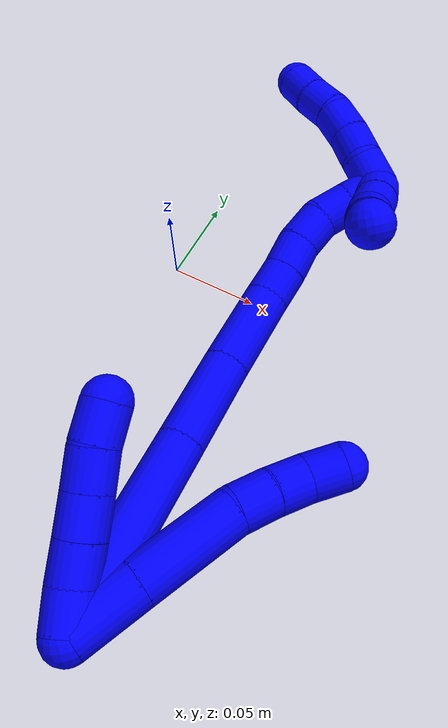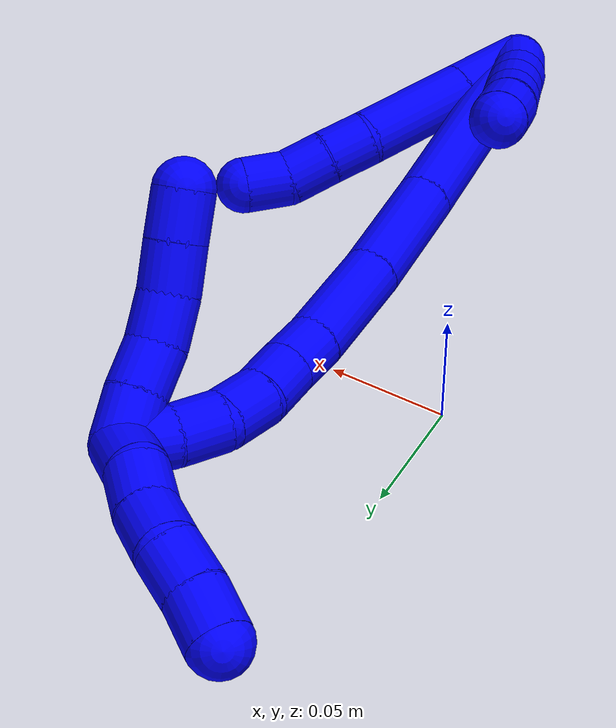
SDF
<sdf version="1.7">
 <world name="default">
  <model name="1">
   <static>0</static>
   <link name="1">
    <collision name="collision-cylinder-e_1_2_8">
     <pose>0.0152 0.008209 0.004612 -1.05896 1.01617 -0.630053</pose>
     <geometry><cylinder><radius>0.0125</radius><length>0.03576</length></cylinder></geometry>
     <surface>
      <friction><ode><mu>1.16</mu><mu2>1.16</mu2><slip1>0</slip1><slip2>0</slip2></ode></friction>
      <contact><ode><kp>1e+06</kp><kd>1</kd><max_vel>0</max_vel><min_depth>0.001</min_depth></ode></contact>
     </surface>
    </collision>
    <visual name="visual-cylinder-e_1_2_8">
     <pose>0.0152 0.008209 0.004612 -1.05896 1.01617 -0.630053</pose>
     <geometry><cylinder><radius>0.0125</radius><length>0.03576</length></cylinder></geometry>
     <material><ambient>0 0 1 1</ambient></material>
    </visual>
    <collision name="collision-cylinder-e_2_8_9">
     <pose>0.05328 0.028758 0.015986 -1.06945 1.01945 -0.639446</pose>
     <geometry><cylinder><radius>0.0125</radius><length>0.053722</length></cylinder></geometry>
     <surface>
      <friction><ode><mu>1.16</mu><mu2>1.16</mu2><slip1>0</slip1><slip2>0</slip2></ode></friction>
      <contact><ode><kp>1e+06</kp><kd>1</kd><max_vel>0</max_vel><min_depth>0.001</min_depth></ode></contact>
     </surface>
    </collision>
    <visual name="visual-cylinder-e_2_8_9">
     <pose>0.05328 0.028758 0.015986 -1.06945 1.01945 -0.639446</pose>
     <geometry><cylinder><radius>0.0125</radius><length>0.053722</length></cylinder></geometry>
     <material><ambient>0 0 1 1</ambient></material>
    </visual>
    <collision name="collision-cylinder-e_3_9_10">
     <pose>0.085225 0.04583 0.023314 -1.45179 1.08661 -0.984095</pose>
     <geometry><cylinder><radius>0.0125</radius><length>0.020484</length></cylinder></geometry>
     <surface>
      <friction><ode><mu>1.16</mu><mu2>1.16</mu2><slip1>0</slip1><slip2>0</slip2></ode></friction>
      <contact><ode><kp>1e+06</kp><kd>1</kd><max_vel>0</max_vel><min_depth>0.001</min_depth></ode></contact>
     </surface>
    </collision>
    <visual name="visual-cylinder-e_3_9_10">
     <pose>0.085225 0.04583 0.023314 -1.45179 1.08661 -0.984095</pose>
     <geometry><cylinder><radius>0.0125</radius><length>0.020484</length></cylinder></geometry>
     <material><ambient>0 0 1 1</ambient></material>
    </visual>
    <collision name="collision-cylinder-e_4_10_11">
     <pose>0.10305 0.055404 0.023639 -1.62063 1.06553 -1.10967</pose>
     <geometry><cylinder><radius>0.0125</radius><length>0.020023</length></cylinder></geometry>
     <surface>
      <friction><ode><mu>1.16</mu><mu2>1.16</mu2><slip1>0</slip1><slip2>0</slip2></ode></friction>
      <contact><ode><kp>1e+06</kp><kd>1</kd><max_vel>0</max_vel><min_depth>0.001</min_depth></ode></contact>
     </surface>
    </collision>
    <visual name="visual-cylinder-e_4_10_11">
     <pose>0.10305 0.055404 0.023639 -1.62063 1.06553 -1.10967</pose>
     <geometry><cylinder><radius>0.0125</radius><length>0.020023</length></cylinder></geometry>
     <material><ambient>0 0 1 1</ambient></material>
    </visual>
    <collision name="collision-cylinder-e_5_11_6">
     <pose>0.121619 0.062177 0.02381 -1.36058 1.37195 -1.17003</pose>
     <geometry><cylinder><radius>0.0125</radius><length>0.020012</length></cylinder></geometry>
     <surface>
      <friction><ode><mu>1.16</mu><mu2>1.16</mu2><slip1>0</slip1><slip2>0</slip2></ode></friction>
      <contact><ode><kp>1e+06</kp><kd>1</kd><max_vel>0</max_vel><min_depth>0.001</min_depth></ode></contact>
     </surface>
    </collision>
    <visual name="visual-cylinder-e_5_11_6">
     <pose>0.121619 0.062177 0.02381 -1.36058 1.37195 -1.17003</pose>
     <geometry><cylinder><radius>0.0125</radius><length>0.020012</length></cylinder></geometry>
     <material><ambient>0 0 1 1</ambient></material>
    </visual>
    <collision name="collision-cylinder-e_1_2_12">
     <pose>0.002297 0.004568 0.008594 -0.48861 0.231802 -0.058028</pose>
     <geometry><cylinder><radius>0.0125</radius><length>0.02</length></cylinder></geometry>
     <surface>
      <friction><ode><mu>1.16</mu><mu2>1.16</mu2><slip1>0</slip1><slip2>0</slip2></ode></friction>
      <contact><ode><kp>1e+06</kp><kd>1</kd><max_vel>0</max_vel><min_depth>0.001</min_depth></ode></contact>
     </surface>
    </collision>
    <visual name="visual-cylinder-e_1_2_12">
     <pose>0.002297 0.004568 0.008594 -0.48861 0.231802 -0.058028</pose>
     <geometry><cylinder><radius>0.0125</radius><length>0.02</length></cylinder></geometry>
     <material><ambient>0 0 1 1</ambient></material>
    </visual>
    <collision name="collision-cylinder-e_2_12_13">
     <pose>0.007827 0.012395 0.026072 -0.351478 0.329121 -0.058958</pose>
     <geometry><cylinder><radius>0.0125</radius><length>0.02</length></cylinder></geometry>
     <surface>
      <friction><ode><mu>1.16</mu><mu2>1.16</mu2><slip1>0</slip1><slip2>0</slip2></ode></friction>
      <contact><ode><kp>1e+06</kp><kd>1</kd><max_vel>0</max_vel><min_depth>0.001</min_depth></ode></contact>
     </surface>
    </collision>
    <visual name="visual-cylinder-e_2_12_13">
     <pose>0.007827 0.012395 0.026072 -0.351478 0.329121 -0.058958</pose>
     <geometry><cylinder><radius>0.0125</radius><length>0.02</length></cylinder></geometry>
     <material><ambient>0 0 1 1</ambient></material>
    </visual>
    <collision name="collision-cylinder-e_3_13_14">
     <pose>0.014154 0.01897 0.043868 -0.356368 0.314639 -0.057121</pose>
     <geometry><cylinder><radius>0.0125</radius><length>0.02</length></cylinder></geometry>
     <surface>
      <friction><ode><mu>1.16</mu><mu2>1.16</mu2><slip1>0</slip1><slip2>0</slip2></ode></friction>
      <contact><ode><kp>1e+06</kp><kd>1</kd><max_vel>0</max_vel><min_depth>0.001</min_depth></ode></contact>
     </surface>
    </collision>
    <visual name="visual-cylinder-e_3_13_14">
     <pose>0.014154 0.01897 0.043868 -0.356368 0.314639 -0.057121</pose>
     <geometry><cylinder><radius>0.0125</radius><length>0.02</length></cylinder></geometry>
     <material><ambient>0 0 1 1</ambient></material>
    </visual>
    <collision name="collision-cylinder-e_4_14_15">
     <pose>0.0203 0.025221 0.06184 -0.313065 0.310079 -0.049324</pose>
     <geometry><cylinder><radius>0.0125</radius><length>0.02</length></cylinder></geometry>
     <surface>
      <friction><ode><mu>1.16</mu><mu2>1.16</mu2><slip1>0</slip1><slip2>0</slip2></ode></friction>
      <contact><ode><kp>1e+06</kp><kd>1</kd><max_vel>0</max_vel><min_depth>0.001</min_depth></ode></contact>
     </surface>
    </collision>
    <visual name="visual-cylinder-e_4_14_15">
     <pose>0.0203 0.025221 0.06184 -0.313065 0.310079 -0.049324</pose>
     <geometry><cylinder><radius>0.0125</radius><length>0.02</length></cylinder></geometry>
     <material><ambient>0 0 1 1</ambient></material>
    </visual>
    <collision name="collision-cylinder-e_5_15_5">
     <pose>0.027532 0.031838 0.079204 -0.417663 0.431338 -0.092787</pose>
     <geometry><cylinder><radius>0.0125</radius><length>0.02</length></cylinder></geometry>
     <surface>
      <friction><ode><mu>1.16</mu><mu2>1.16</mu2><slip1>0</slip1><slip2>0</slip2></ode></friction>
      <contact><ode><kp>1e+06</kp><kd>1</kd><max_vel>0</max_vel><min_depth>0.001</min_depth></ode></contact>
     </surface>
    </collision>
    <visual name="visual-cylinder-e_5_15_5">
     <pose>0.027532 0.031838 0.079204 -0.417663 0.431338 -0.092787</pose>
     <geometry><cylinder><radius>0.0125</radius><length>0.02</length></cylinder></geometry>
     <material><ambient>0 0 1 1</ambient></material>
    </visual>
    <collision name="collision-cylinder-e_1_2_16">
     <pose>0.027346 0.034272 0.02541 -0.932808 0.569984 -0.292877</pose>
     <geometry><cylinder><radius>0.0125</radius><length>0.101352</length></cylinder></geometry>
     <surface>
      <friction><ode><mu>1.16</mu><mu2>1.16</mu2><slip1>0</slip1><slip2>0</slip2></ode></friction>
      <contact><ode><kp>1e+06</kp><kd>1</kd><max_vel>0</max_vel><min_depth>0.001</min_depth></ode></contact>
     </surface>
    </collision>
    <visual name="visual-cylinder-e_1_2_16">
     <pose>0.027346 0.034272 0.02541 -0.932808 0.569984 -0.292877</pose>
     <geometry><cylinder><radius>0.0125</radius><length>0.101352</length></cylinder></geometry>
     <material><ambient>0 0 1 1</ambient></material>
    </visual>
    <collision name="collision-cylinder-e_2_16_17">
     <pose>0.068547 0.084857 0.063978 -0.892068 0.584153 -0.285593</pose>
     <geometry><cylinder><radius>0.0125</radius><length>0.050246</length></cylinder></geometry>
     <surface>
      <friction><ode><mu>1.16</mu><mu2>1.16</mu2><slip1>0</slip1><slip2>0</slip2></ode></friction>
      <contact><ode><kp>1e+06</kp><kd>1</kd><max_vel>0</max_vel><min_depth>0.001</min_depth></ode></contact>
     </surface>
    </collision>
    <visual name="visual-cylinder-e_2_16_17">
     <pose>0.068547 0.084857 0.063978 -0.892068 0.584153 -0.285593</pose>
     <geometry><cylinder><radius>0.0125</radius><length>0.050246</length></cylinder></geometry>
     <material><ambient>0 0 1 1</ambient></material>
    </visual>
    <collision name="collision-cylinder-e_3_17_18">
     <pose>0.096236 0.115291 0.089949 -0.833893 0.627626 -0.285529</pose>
     <geometry><cylinder><radius>0.0125</radius><length>0.047116</length></cylinder></geometry>
     <surface>
      <friction><ode><mu>1.16</mu><mu2>1.16</mu2><slip1>0</slip1><slip2>0</slip2></ode></friction>
      <contact><ode><kp>1e+06</kp><kd>1</kd><max_vel>0</max_vel><min_depth>0.001</min_depth></ode></contact>
     </surface>
    </collision>
    <visual name="visual-cylinder-e_3_17_18">
     <pose>0.096236 0.115291 0.089949 -0.833893 0.627626 -0.285529</pose>
     <geometry><cylinder><radius>0.0125</radius><length>0.047116</length></cylinder></geometry>
     <material><ambient>0 0 1 1</ambient></material>
    </visual>
    <collision name="collision-cylinder-e_4_18_19">
     <pose>0.116418 0.134621 0.108536 -0.733973 0.684668 -0.272279</pose>
     <geometry><cylinder><radius>0.0125</radius><length>0.020077</length></cylinder></geometry>
     <surface>
      <friction><ode><mu>1.16</mu><mu2>1.16</mu2><slip1>0</slip1><slip2>0</slip2></ode></friction>
      <contact><ode><kp>1e+06</kp><kd>1</kd><max_vel>0</max_vel><min_depth>0.001</min_depth></ode></contact>
     </surface>
    </collision>
    <visual name="visual-cylinder-e_4_18_19">
     <pose>0.116418 0.134621 0.108536 -0.733973 0.684668 -0.272279</pose>
     <geometry><cylinder><radius>0.0125</radius><length>0.020077</length></cylinder></geometry>
     <material><ambient>0 0 1 1</ambient></material>
    </visual>
    <collision name="collision-cylinder-e_5_19_20">
     <pose>0.128676 0.144813 0.120857 -0.650671 0.622829 -0.216312</pose>
     <geometry><cylinder><radius>0.0125</radius><length>0.020259</length></cylinder></geometry>
     <surface>
      <friction><ode><mu>1.16</mu><mu2>1.16</mu2><slip1>0</slip1><slip2>0</slip2></ode></friction>
      <contact><ode><kp>1e+06</kp><kd>1</kd><max_vel>0</max_vel><min_depth>0.001</min_depth></ode></contact>
     </surface>
    </collision>
    <visual name="visual-cylinder-e_5_19_20">
     <pose>0.128676 0.144813 0.120857 -0.650671 0.622829 -0.216312</pose>
     <geometry><cylinder><radius>0.0125</radius><length>0.020259</length></cylinder></geometry>
     <material><ambient>0 0 1 1</ambient></material>
    </visual>
    <collision name="collision-cylinder-e_6_20_21">
     <pose>0.142291 0.153869 0.132944 -0.633814 0.842234 -0.291709</pose>
     <geometry><cylinder><radius>0.0125</radius><length>0.020658</length></cylinder></geometry>
     <surface>
      <friction><ode><mu>1.16</mu><mu2>1.16</mu2><slip1>0</slip1><slip2>0</slip2></ode></friction>
      <contact><ode><kp>1e+06</kp><kd>1</kd><max_vel>0</max_vel><min_depth>0.001</min_depth></ode></contact>
     </surface>
    </collision>
    <visual name="visual-cylinder-e_6_20_21">
     <pose>0.142291 0.153869 0.132944 -0.633814 0.842234 -0.291709</pose>
     <geometry><cylinder><radius>0.0125</radius><length>0.020658</length></cylinder></geometry>
     <material><ambient>0 0 1 1</ambient></material>
    </visual>
    <collision name="collision-cylinder-e_7_21_22">
     <pose>0.15928 0.160608 0.141274 -0.762968 1.17694 -0.523124</pose>
     <geometry><cylinder><radius>0.0125</radius><length>0.020103</length></cylinder></geometry>
     <surface>
      <friction><ode><mu>1.16</mu><mu2>1.16</mu2><slip1>0</slip1><slip2>0</slip2></ode></friction>
      <contact><ode><kp>1e+06</kp><kd>1</kd><max_vel>0</max_vel><min_depth>0.001</min_depth></ode></contact>
     </surface>
    </collision>
    <visual name="visual-cylinder-e_7_21_22">
     <pose>0.15928 0.160608 0.141274 -0.762968 1.17694 -0.523124</pose>
     <geometry><cylinder><radius>0.0125</radius><length>0.020103</length></cylinder></geometry>
     <material><ambient>0 0 1 1</ambient></material>
    </visual>
    <collision name="collision-cylinder-e_8_22_1">
     <pose>0.178213 0.164706 0.146647 -0.506131 1.27357 -0.37795</pose>
     <geometry><cylinder><radius>0.0125</radius><length>0.020189</length></cylinder></geometry>
     <surface>
      <friction><ode><mu>1.16</mu><mu2>1.16</mu2><slip1>0</slip1><slip2>0</slip2></ode></friction>
      <contact><ode><kp>1e+06</kp><kd>1</kd><max_vel>0</max_vel><min_depth>0.001</min_depth></ode></contact>
     </surface>
    </collision>
    <visual name="visual-cylinder-e_8_22_1">
     <pose>0.178213 0.164706 0.146647 -0.506131 1.27357 -0.37795</pose>
     <geometry><cylinder><radius>0.0125</radius><length>0.020189</length></cylinder></geometry>
     <material><ambient>0 0 1 1</ambient></material>
    </visual>
    <collision name="collision-cylinder-e_1_1_23">
     <pose>0.185359 0.169961 0.158128 -0.405752 -0.253328 0.05238</pose>
     <geometry><cylinder><radius>0.0125</radius><length>0.02</length></cylinder></geometry>
     <surface>
      <friction><ode><mu>1.16</mu><mu2>1.16</mu2><slip1>0</slip1><slip2>0</slip2></ode></friction>
      <contact><ode><kp>1e+06</kp><kd>1</kd><max_vel>0</max_vel><min_depth>0.001</min_depth></ode></contact>
     </surface>
    </collision>
    <visual name="visual-cylinder-e_1_1_23">
     <pose>0.185359 0.169961 0.158128 -0.405752 -0.253328 0.05238</pose>
     <geometry><cylinder><radius>0.0125</radius><length>0.02</length></cylinder></geometry>
     <material><ambient>0 0 1 1</ambient></material>
    </visual>
    <collision name="collision-cylinder-e_2_23_24">
     <pose>0.181262 0.179974 0.174712 -0.677948 -0.159713 0.056417</pose>
     <geometry><cylinder><radius>0.0125</radius><length>0.02</length></cylinder></geometry>
     <surface>
      <friction><ode><mu>1.16</mu><mu2>1.16</mu2><slip1>0</slip1><slip2>0</slip2></ode></friction>
      <contact><ode><kp>1e+06</kp><kd>1</kd><max_vel>0</max_vel><min_depth>0.001</min_depth></ode></contact>
     </surface>
    </collision>
    <visual name="visual-cylinder-e_2_23_24">
     <pose>0.181262 0.179974 0.174712 -0.677948 -0.159713 0.056417</pose>
     <geometry><cylinder><radius>0.0125</radius><length>0.02</length></cylinder></geometry>
     <material><ambient>0 0 1 1</ambient></material>
    </visual>
    <collision name="collision-cylinder-e_3_24_25">
     <pose>0.176579 0.191131 0.190513 -0.549246 -0.314439 0.089269</pose>
     <geometry><cylinder><radius>0.0125</radius><length>0.02</length></cylinder></geometry>
     <surface>
      <friction><ode><mu>1.16</mu><mu2>1.16</mu2><slip1>0</slip1><slip2>0</slip2></ode></friction>
      <contact><ode><kp>1e+06</kp><kd>1</kd><max_vel>0</max_vel><min_depth>0.001</min_depth></ode></contact>
     </surface>
    </collision>
    <visual name="visual-cylinder-e_3_24_25">
     <pose>0.176579 0.191131 0.190513 -0.549246 -0.314439 0.089269</pose>
     <geometry><cylinder><radius>0.0125</radius><length>0.02</length></cylinder></geometry>
     <material><ambient>0 0 1 1</ambient></material>
    </visual>
    <collision name="collision-cylinder-e_4_25_26">
     <pose>0.169001 0.202569 0.204786 -0.810004 -0.465079 0.20236</pose>
     <geometry><cylinder><radius>0.0125</radius><length>0.02</length></cylinder></geometry>
     <surface>
      <friction><ode><mu>1.16</mu><mu2>1.16</mu2><slip1>0</slip1><slip2>0</slip2></ode></friction>
      <contact><ode><kp>1e+06</kp><kd>1</kd><max_vel>0</max_vel><min_depth>0.001</min_depth></ode></contact>
     </surface>
    </collision>
    <visual name="visual-cylinder-e_4_25_26">
     <pose>0.169001 0.202569 0.204786 -0.810004 -0.465079 0.20236</pose>
     <geometry><cylinder><radius>0.0125</radius><length>0.02</length></cylinder></geometry>
     <material><ambient>0 0 1 1</ambient></material>
    </visual>
    <collision name="collision-cylinder-e_5_26_4">
     <pose>0.160903 0.215923 0.217242 -0.829925 -0.369663 0.164362</pose>
     <geometry><cylinder><radius>0.0125</radius><length>0.02</length></cylinder></geometry>
     <surface>
      <friction><ode><mu>1.16</mu><mu2>1.16</mu2><slip1>0</slip1><slip2>0</slip2></ode></friction>
      <contact><ode><kp>1e+06</kp><kd>1</kd><max_vel>0</max_vel><min_depth>0.001</min_depth></ode></contact>
     </surface>
    </collision>
    <visual name="visual-cylinder-e_5_26_4">
     <pose>0.160903 0.215923 0.217242 -0.829925 -0.369663 0.164362</pose>
     <geometry><cylinder><radius>0.0125</radius><length>0.02</length></cylinder></geometry>
     <material><ambient>0 0 1 1</ambient></material>
    </visual>
    <collision name="collision-cylinder-e_1_1_27">
     <pose>0.18524 0.156946 0.146303 1.87931 -0.265663 -0.361651</pose>
     <geometry><cylinder><radius>0.0125</radius><length>0.02</length></cylinder></geometry>
     <surface>
      <friction><ode><mu>1.16</mu><mu2>1.16</mu2><slip1>0</slip1><slip2>0</slip2></ode></friction>
      <contact><ode><kp>1e+06</kp><kd>1</kd><max_vel>0</max_vel><min_depth>0.001</min_depth></ode></contact>
     </surface>
    </collision>
    <visual name="visual-cylinder-e_1_1_27">
     <pose>0.18524 0.156946 0.146303 1.87931 -0.265663 -0.361651</pose>
     <geometry><cylinder><radius>0.0125</radius><length>0.02</length></cylinder></geometry>
     <material><ambient>0 0 1 1</ambient></material>
    </visual>
    <collision name="collision-cylinder-e_2_27_28">
     <pose>0.178968 0.138783 0.140873 1.84267 -0.373284 -0.487479</pose>
     <geometry><cylinder><radius>0.0125</radius><length>0.02</length></cylinder></geometry>
     <surface>
      <friction><ode><mu>1.16</mu><mu2>1.16</mu2><slip1>0</slip1><slip2>0</slip2></ode></friction>
      <contact><ode><kp>1e+06</kp><kd>1</kd><max_vel>0</max_vel><min_depth>0.001</min_depth></ode></contact>
     </surface>
    </collision>
    <visual name="visual-cylinder-e_2_27_28">
     <pose>0.178968 0.138783 0.140873 1.84267 -0.373284 -0.487479</pose>
     <geometry><cylinder><radius>0.0125</radius><length>0.02</length></cylinder></geometry>
     <material><ambient>0 0 1 1</ambient></material>
    </visual>
    <collision name="collision-cylinder-e_3_28_29">
     <pose>0.173127 0.120099 0.137465 1.66396 -0.221141 -0.242564</pose>
     <geometry><cylinder><radius>0.0125</radius><length>0.02</length></cylinder></geometry>
     <surface>
      <friction><ode><mu>1.16</mu><mu2>1.16</mu2><slip1>0</slip1><slip2>0</slip2></ode></friction>
      <contact><ode><kp>1e+06</kp><kd>1</kd><max_vel>0</max_vel><min_depth>0.001</min_depth></ode></contact>
     </surface>
    </collision>
    <visual name="visual-cylinder-e_3_28_29">
     <pose>0.173127 0.120099 0.137465 1.66396 -0.221141 -0.242564</pose>
     <geometry><cylinder><radius>0.0125</radius><length>0.02</length></cylinder></geometry>
     <material><ambient>0 0 1 1</ambient></material>
    </visual>
    <collision name="collision-cylinder-e_4_29_30">
     <pose>0.169879 0.100458 0.137137 1.51249 -0.105672 -0.099694</pose>
     <geometry><cylinder><radius>0.0125</radius><length>0.02</length></cylinder></geometry>
     <surface>
      <friction><ode><mu>1.16</mu><mu2>1.16</mu2><slip1>0</slip1><slip2>0</slip2></ode></friction>
      <contact><ode><kp>1e+06</kp><kd>1</kd><max_vel>0</max_vel><min_depth>0.001</min_depth></ode></contact>
     </surface>
    </collision>
    <visual name="visual-cylinder-e_4_29_30">
     <pose>0.169879 0.100458 0.137137 1.51249 -0.105672 -0.099694</pose>
     <geometry><cylinder><radius>0.0125</radius><length>0.02</length></cylinder></geometry>
     <material><ambient>0 0 1 1</ambient></material>
    </visual>
    <collision name="collision-cylinder-e_5_30_3">
     <pose>0.167545 0.08062 0.138099 1.53217 -0.128247 -0.123399</pose>
     <geometry><cylinder><radius>0.0125</radius><length>0.02</length></cylinder></geometry>
     <surface>
      <friction><ode><mu>1.16</mu><mu2>1.16</mu2><slip1>0</slip1><slip2>0</slip2></ode></friction>
      <contact><ode><kp>1e+06</kp><kd>1</kd><max_vel>0</max_vel><min_depth>0.001</min_depth></ode></contact>
     </surface>
    </collision>
    <visual name="visual-cylinder-e_5_30_3">
     <pose>0.167545 0.08062 0.138099 1.53217 -0.128247 -0.123399</pose>
     <geometry><cylinder><radius>0.0125</radius><length>0.02</length></cylinder></geometry>
     <material><ambient>0 0 1 1</ambient></material>
    </visual>
    <collision name="collision-sphere-3">
     <pose>0.166266 0.07071 0.138482 0 -0 0</pose>
     <geometry><sphere><radius>0.0125</radius></sphere></geometry>
     <surface>
      <friction><ode><mu>1.16</mu><mu2>1.16</mu2><slip1>0</slip1><slip2>0</slip2></ode></friction>
      <contact><ode><kp>1e+06</kp><kd>1</kd><max_vel>0</max_vel><min_depth>0.001</min_depth></ode></contact>
     </surface>
    </collision>
    <visual name="visual-sphere-3">
     <pose>0.166266 0.07071 0.138482 0 -0 0</pose>
     <geometry><sphere><radius>0.0125</radius></sphere></geometry>
     <material><ambient>0 0 1 1</ambient></material>
    </visual>
    <collision name="collision-sphere-30">
     <pose>0.168824 0.090531 0.137716 0 -0 0</pose>
     <geometry><sphere><radius>0.0125</radius></sphere></geometry>
     <surface>
      <friction><ode><mu>1.16</mu><mu2>1.16</mu2><slip1>0</slip1><slip2>0</slip2></ode></friction>
      <contact><ode><kp>1e+06</kp><kd>1</kd><max_vel>0</max_vel><min_depth>0.001</min_depth></ode></contact>
     </surface>
    </collision>
    <visual name="visual-sphere-30">
     <pose>0.168824 0.090531 0.137716 0 -0 0</pose>
     <geometry><sphere><radius>0.0125</radius></sphere></geometry>
     <material><ambient>0 0 1 1</ambient></material>
    </visual>
    <collision name="collision-sphere-29">
     <pose>0.170934 0.110385 0.136557 0 -0 0</pose>
     <geometry><sphere><radius>0.0125</radius></sphere></geometry>
     <surface>
      <friction><ode><mu>1.16</mu><mu2>1.16</mu2><slip1>0</slip1><slip2>0</slip2></ode></friction>
      <contact><ode><kp>1e+06</kp><kd>1</kd><max_vel>0</max_vel><min_depth>0.001</min_depth></ode></contact>
     </surface>
    </collision>
    <visual name="visual-sphere-29">
     <pose>0.170934 0.110385 0.136557 0 -0 0</pose>
     <geometry><sphere><radius>0.0125</radius></sphere></geometry>
     <material><ambient>0 0 1 1</ambient></material>
    </visual>
    <collision name="collision-sphere-28">
     <pose>0.175321 0.129814 0.138372 0 -0 0</pose>
     <geometry><sphere><radius>0.0125</radius></sphere></geometry>
     <surface>
      <friction><ode><mu>1.16</mu><mu2>1.16</mu2><slip1>0</slip1><slip2>0</slip2></ode></friction>
      <contact><ode><kp>1e+06</kp><kd>1</kd><max_vel>0</max_vel><min_depth>0.001</min_depth></ode></contact>
     </surface>
    </collision>
    <visual name="visual-sphere-28">
     <pose>0.175321 0.129814 0.138372 0 -0 0</pose>
     <geometry><sphere><radius>0.0125</radius></sphere></geometry>
     <material><ambient>0 0 1 1</ambient></material>
    </visual>
    <collision name="collision-sphere-27">
     <pose>0.182614 0.147752 0.143373 0 -0 0</pose>
     <geometry><sphere><radius>0.0125</radius></sphere></geometry>
     <surface>
      <friction><ode><mu>1.16</mu><mu2>1.16</mu2><slip1>0</slip1><slip2>0</slip2></ode></friction>
      <contact><ode><kp>1e+06</kp><kd>1</kd><max_vel>0</max_vel><min_depth>0.001</min_depth></ode></contact>
     </surface>
    </collision>
    <visual name="visual-sphere-27">
     <pose>0.182614 0.147752 0.143373 0 -0 0</pose>
     <geometry><sphere><radius>0.0125</radius></sphere></geometry>
     <material><ambient>0 0 1 1</ambient></material>
    </visual>
    <collision name="collision-sphere-4">
     <pose>0.15729 0.222803 0.223536 0 -0 0</pose>
     <geometry><sphere><radius>0.0125</radius></sphere></geometry>
     <surface>
      <friction><ode><mu>1.16</mu><mu2>1.16</mu2><slip1>0</slip1><slip2>0</slip2></ode></friction>
      <contact><ode><kp>1e+06</kp><kd>1</kd><max_vel>0</max_vel><min_depth>0.001</min_depth></ode></contact>
     </surface>
    </collision>
    <visual name="visual-sphere-4">
     <pose>0.15729 0.222803 0.223536 0 -0 0</pose>
     <geometry><sphere><radius>0.0125</radius></sphere></geometry>
     <material><ambient>0 0 1 1</ambient></material>
    </visual>
    <collision name="collision-sphere-26">
     <pose>0.164516 0.209042 0.210949 0 -0 0</pose>
     <geometry><sphere><radius>0.0125</radius></sphere></geometry>
     <surface>
      <friction><ode><mu>1.16</mu><mu2>1.16</mu2><slip1>0</slip1><slip2>0</slip2></ode></friction>
      <contact><ode><kp>1e+06</kp><kd>1</kd><max_vel>0</max_vel><min_depth>0.001</min_depth></ode></contact>
     </surface>
    </collision>
    <visual name="visual-sphere-26">
     <pose>0.164516 0.209042 0.210949 0 -0 0</pose>
     <geometry><sphere><radius>0.0125</radius></sphere></geometry>
     <material><ambient>0 0 1 1</ambient></material>
    </visual>
    <collision name="collision-sphere-25">
     <pose>0.173486 0.196095 0.198624 0 -0 0</pose>
     <geometry><sphere><radius>0.0125</radius></sphere></geometry>
     <surface>
      <friction><ode><mu>1.16</mu><mu2>1.16</mu2><slip1>0</slip1><slip2>0</slip2></ode></friction>
      <contact><ode><kp>1e+06</kp><kd>1</kd><max_vel>0</max_vel><min_depth>0.001</min_depth></ode></contact>
     </surface>
    </collision>
    <visual name="visual-sphere-25">
     <pose>0.173486 0.196095 0.198624 0 -0 0</pose>
     <geometry><sphere><radius>0.0125</radius></sphere></geometry>
     <material><ambient>0 0 1 1</ambient></material>
    </visual>
    <collision name="collision-sphere-24">
     <pose>0.179672 0.186166 0.182402 0 -0 0</pose>
     <geometry><sphere><radius>0.0125</radius></sphere></geometry>
     <surface>
      <friction><ode><mu>1.16</mu><mu2>1.16</mu2><slip1>0</slip1><slip2>0</slip2></ode></friction>
      <contact><ode><kp>1e+06</kp><kd>1</kd><max_vel>0</max_vel><min_depth>0.001</min_depth></ode></contact>
     </surface>
    </collision>
    <visual name="visual-sphere-24">
     <pose>0.179672 0.186166 0.182402 0 -0 0</pose>
     <geometry><sphere><radius>0.0125</radius></sphere></geometry>
     <material><ambient>0 0 1 1</ambient></material>
    </visual>
    <collision name="collision-sphere-23">
     <pose>0.182853 0.173782 0.167023 0 -0 0</pose>
     <geometry><sphere><radius>0.0125</radius></sphere></geometry>
     <surface>
      <friction><ode><mu>1.16</mu><mu2>1.16</mu2><slip1>0</slip1><slip2>0</slip2></ode></friction>
      <contact><ode><kp>1e+06</kp><kd>1</kd><max_vel>0</max_vel><min_depth>0.001</min_depth></ode></contact>
     </surface>
    </collision>
    <visual name="visual-sphere-23">
     <pose>0.182853 0.173782 0.167023 0 -0 0</pose>
     <geometry><sphere><radius>0.0125</radius></sphere></geometry>
     <material><ambient>0 0 1 1</ambient></material>
    </visual>
    <collision name="collision-sphere-1">
     <pose>0.187865 0.16614 0.149233 0 -0 0</pose>
     <geometry><sphere><radius>0.0125</radius></sphere></geometry>
     <surface>
      <friction><ode><mu>1.16</mu><mu2>1.16</mu2><slip1>0</slip1><slip2>0</slip2></ode></friction>
      <contact><ode><kp>1e+06</kp><kd>1</kd><max_vel>0</max_vel><min_depth>0.001</min_depth></ode></contact>
     </surface>
    </collision>
    <visual name="visual-sphere-1">
     <pose>0.187865 0.16614 0.149233 0 -0 0</pose>
     <geometry><sphere><radius>0.0125</radius></sphere></geometry>
     <material><ambient>0 0 1 1</ambient></material>
    </visual>
    <collision name="collision-sphere-22">
     <pose>0.168562 0.163273 0.144062 0 -0 0</pose>
     <geometry><sphere><radius>0.0125</radius></sphere></geometry>
     <surface>
      <friction><ode><mu>1.16</mu><mu2>1.16</mu2><slip1>0</slip1><slip2>0</slip2></ode></friction>
      <contact><ode><kp>1e+06</kp><kd>1</kd><max_vel>0</max_vel><min_depth>0.001</min_depth></ode></contact>
     </surface>
    </collision>
    <visual name="visual-sphere-22">
     <pose>0.168562 0.163273 0.144062 0 -0 0</pose>
     <geometry><sphere><radius>0.0125</radius></sphere></geometry>
     <material><ambient>0 0 1 1</ambient></material>
    </visual>
    <collision name="collision-sphere-21">
     <pose>0.149998 0.157942 0.138486 0 -0 0</pose>
     <geometry><sphere><radius>0.0125</radius></sphere></geometry>
     <surface>
      <friction><ode><mu>1.16</mu><mu2>1.16</mu2><slip1>0</slip1><slip2>0</slip2></ode></friction>
      <contact><ode><kp>1e+06</kp><kd>1</kd><max_vel>0</max_vel><min_depth>0.001</min_depth></ode></contact>
     </surface>
    </collision>
    <visual name="visual-sphere-21">
     <pose>0.149998 0.157942 0.138486 0 -0 0</pose>
     <geometry><sphere><radius>0.0125</radius></sphere></geometry>
     <material><ambient>0 0 1 1</ambient></material>
    </visual>
    <collision name="collision-sphere-6">
     <pose>0.131428 0.06411 0.024223 0 -0 0</pose>
     <geometry><sphere><radius>0.0125</radius></sphere></geometry>
     <surface>
      <friction><ode><mu>1.16</mu><mu2>1.16</mu2><slip1>0</slip1><slip2>0</slip2></ode></friction>
      <contact><ode><kp>1e+06</kp><kd>1</kd><max_vel>0</max_vel><min_depth>0.001</min_depth></ode></contact>
     </surface>
    </collision>
    <visual name="visual-sphere-6">
     <pose>0.131428 0.06411 0.024223 0 -0 0</pose>
     <geometry><sphere><radius>0.0125</radius></sphere></geometry>
     <material><ambient>0 0 1 1</ambient></material>
    </visual>
    <collision name="collision-sphere-11">
     <pose>0.111811 0.060244 0.023398 0 -0 0</pose>
     <geometry><sphere><radius>0.0125</radius></sphere></geometry>
     <surface>
      <friction><ode><mu>1.16</mu><mu2>1.16</mu2><slip1>0</slip1><slip2>0</slip2></ode></friction>
      <contact><ode><kp>1e+06</kp><kd>1</kd><max_vel>0</max_vel><min_depth>0.001</min_depth></ode></contact>
     </surface>
    </collision>
    <visual name="visual-sphere-11">
     <pose>0.111811 0.060244 0.023398 0 -0 0</pose>
     <geometry><sphere><radius>0.0125</radius></sphere></geometry>
     <material><ambient>0 0 1 1</ambient></material>
    </visual>
    <collision name="collision-sphere-10">
     <pose>0.09429 0.050564 0.023881 0 -0 0</pose>
     <geometry><sphere><radius>0.0125</radius></sphere></geometry>
     <surface>
      <friction><ode><mu>1.16</mu><mu2>1.16</mu2><slip1>0</slip1><slip2>0</slip2></ode></friction>
      <contact><ode><kp>1e+06</kp><kd>1</kd><max_vel>0</max_vel><min_depth>0.001</min_depth></ode></contact>
     </surface>
    </collision>
    <visual name="visual-sphere-10">
     <pose>0.09429 0.050564 0.023881 0 -0 0</pose>
     <geometry><sphere><radius>0.0125</radius></sphere></geometry>
     <material><ambient>0 0 1 1</ambient></material>
    </visual>
    <collision name="collision-sphere-9">
     <pose>0.07616 0.041097 0.022748 0 -0 0</pose>
     <geometry><sphere><radius>0.0125</radius></sphere></geometry>
     <surface>
      <friction><ode><mu>1.16</mu><mu2>1.16</mu2><slip1>0</slip1><slip2>0</slip2></ode></friction>
      <contact><ode><kp>1e+06</kp><kd>1</kd><max_vel>0</max_vel><min_depth>0.001</min_depth></ode></contact>
     </surface>
    </collision>
    <visual name="visual-sphere-9">
     <pose>0.07616 0.041097 0.022748 0 -0 0</pose>
     <geometry><sphere><radius>0.0125</radius></sphere></geometry>
     <material><ambient>0 0 1 1</ambient></material>
    </visual>
    <collision name="collision-sphere-2">
     <geometry><sphere><radius>0.0125</radius></sphere></geometry>
     <surface>
      <friction><ode><mu>1.16</mu><mu2>1.16</mu2><slip1>0</slip1><slip2>0</slip2></ode></friction>
      <contact><ode><kp>1e+06</kp><kd>1</kd><max_vel>0</max_vel><min_depth>0.001</min_depth></ode></contact>
     </surface>
    </collision>
    <visual name="visual-sphere-2">
     <geometry><sphere><radius>0.0125</radius></sphere></geometry>
     <material><ambient>0 0 1 1</ambient></material>
    </visual>
    <collision name="collision-sphere-19">
     <pose>0.122767 0.13983 0.11431 0 -0 0</pose>
     <geometry><sphere><radius>0.0125</radius></sphere></geometry>
     <surface>
      <friction><ode><mu>1.16</mu><mu2>1.16</mu2><slip1>0</slip1><slip2>0</slip2></ode></friction>
      <contact><ode><kp>1e+06</kp><kd>1</kd><max_vel>0</max_vel><min_depth>0.001</min_depth></ode></contact>
     </surface>
    </collision>
    <visual name="visual-sphere-19">
     <pose>0.122767 0.13983 0.11431 0 -0 0</pose>
     <geometry><sphere><radius>0.0125</radius></sphere></geometry>
     <material><ambient>0 0 1 1</ambient></material>
    </visual>
    <collision name="collision-sphere-8">
     <pose>0.030399 0.016419 0.009223 0 -0 0</pose>
     <geometry><sphere><radius>0.0125</radius></sphere></geometry>
     <surface>
      <friction><ode><mu>1.16</mu><mu2>1.16</mu2><slip1>0</slip1><slip2>0</slip2></ode></friction>
      <contact><ode><kp>1e+06</kp><kd>1</kd><max_vel>0</max_vel><min_depth>0.001</min_depth></ode></contact>
     </surface>
    </collision>
    <visual name="visual-sphere-8">
     <pose>0.030399 0.016419 0.009223 0 -0 0</pose>
     <geometry><sphere><radius>0.0125</radius></sphere></geometry>
     <material><ambient>0 0 1 1</ambient></material>
    </visual>
    <collision name="collision-sphere-12">
     <pose>0.004595 0.009137 0.017187 0 -0 0</pose>
     <geometry><sphere><radius>0.0125</radius></sphere></geometry>
     <surface>
      <friction><ode><mu>1.16</mu><mu2>1.16</mu2><slip1>0</slip1><slip2>0</slip2></ode></friction>
      <contact><ode><kp>1e+06</kp><kd>1</kd><max_vel>0</max_vel><min_depth>0.001</min_depth></ode></contact>
     </surface>
    </collision>
    <visual name="visual-sphere-12">
     <pose>0.004595 0.009137 0.017187 0 -0 0</pose>
     <geometry><sphere><radius>0.0125</radius></sphere></geometry>
     <material><ambient>0 0 1 1</ambient></material>
    </visual>
    <collision name="collision-sphere-13">
     <pose>0.011059 0.015653 0.034957 0 -0 0</pose>
     <geometry><sphere><radius>0.0125</radius></sphere></geometry>
     <surface>
      <friction><ode><mu>1.16</mu><mu2>1.16</mu2><slip1>0</slip1><slip2>0</slip2></ode></friction>
      <contact><ode><kp>1e+06</kp><kd>1</kd><max_vel>0</max_vel><min_depth>0.001</min_depth></ode></contact>
     </surface>
    </collision>
    <visual name="visual-sphere-13">
     <pose>0.011059 0.015653 0.034957 0 -0 0</pose>
     <geometry><sphere><radius>0.0125</radius></sphere></geometry>
     <material><ambient>0 0 1 1</ambient></material>
    </visual>
    <collision name="collision-sphere-14">
     <pose>0.017248 0.022288 0.05278 0 -0 0</pose>
     <geometry><sphere><radius>0.0125</radius></sphere></geometry>
     <surface>
      <friction><ode><mu>1.16</mu><mu2>1.16</mu2><slip1>0</slip1><slip2>0</slip2></ode></friction>
      <contact><ode><kp>1e+06</kp><kd>1</kd><max_vel>0</max_vel><min_depth>0.001</min_depth></ode></contact>
     </surface>
    </collision>
    <visual name="visual-sphere-14">
     <pose>0.017248 0.022288 0.05278 0 -0 0</pose>
     <geometry><sphere><radius>0.0125</radius></sphere></geometry>
     <material><ambient>0 0 1 1</ambient></material>
    </visual>
    <collision name="collision-sphere-15">
     <pose>0.023351 0.028154 0.070901 0 -0 0</pose>
     <geometry><sphere><radius>0.0125</radius></sphere></geometry>
     <surface>
      <friction><ode><mu>1.16</mu><mu2>1.16</mu2><slip1>0</slip1><slip2>0</slip2></ode></friction>
      <contact><ode><kp>1e+06</kp><kd>1</kd><max_vel>0</max_vel><min_depth>0.001</min_depth></ode></contact>
     </surface>
    </collision>
    <visual name="visual-sphere-15">
     <pose>0.023351 0.028154 0.070901 0 -0 0</pose>
     <geometry><sphere><radius>0.0125</radius></sphere></geometry>
     <material><ambient>0 0 1 1</ambient></material>
    </visual>
    <collision name="collision-sphere-5">
     <pose>0.031713 0.035523 0.087507 0 -0 0</pose>
     <geometry><sphere><radius>0.0125</radius></sphere></geometry>
     <surface>
      <friction><ode><mu>1.16</mu><mu2>1.16</mu2><slip1>0</slip1><slip2>0</slip2></ode></friction>
      <contact><ode><kp>1e+06</kp><kd>1</kd><max_vel>0</max_vel><min_depth>0.001</min_depth></ode></contact>
     </surface>
    </collision>
    <visual name="visual-sphere-5">
     <pose>0.031713 0.035523 0.087507 0 -0 0</pose>
     <geometry><sphere><radius>0.0125</radius></sphere></geometry>
     <material><ambient>0 0 1 1</ambient></material>
    </visual>
    <collision name="collision-sphere-16">
     <pose>0.054692 0.068545 0.050821 0 -0 0</pose>
     <geometry><sphere><radius>0.0125</radius></sphere></geometry>
     <surface>
      <friction><ode><mu>1.16</mu><mu2>1.16</mu2><slip1>0</slip1><slip2>0</slip2></ode></friction>
      <contact><ode><kp>1e+06</kp><kd>1</kd><max_vel>0</max_vel><min_depth>0.001</min_depth></ode></contact>
     </surface>
    </collision>
    <visual name="visual-sphere-16">
     <pose>0.054692 0.068545 0.050821 0 -0 0</pose>
     <geometry><sphere><radius>0.0125</radius></sphere></geometry>
     <material><ambient>0 0 1 1</ambient></material>
    </visual>
    <collision name="collision-sphere-17">
     <pose>0.082402 0.10117 0.077135 0 -0 0</pose>
     <geometry><sphere><radius>0.0125</radius></sphere></geometry>
     <surface>
      <friction><ode><mu>1.16</mu><mu2>1.16</mu2><slip1>0</slip1><slip2>0</slip2></ode></friction>
      <contact><ode><kp>1e+06</kp><kd>1</kd><max_vel>0</max_vel><min_depth>0.001</min_depth></ode></contact>
     </surface>
    </collision>
    <visual name="visual-sphere-17">
     <pose>0.082402 0.10117 0.077135 0 -0 0</pose>
     <geometry><sphere><radius>0.0125</radius></sphere></geometry>
     <material><ambient>0 0 1 1</ambient></material>
    </visual>
    <collision name="collision-sphere-18">
     <pose>0.11007 0.129412 0.102763 0 -0 0</pose>
     <geometry><sphere><radius>0.0125</radius></sphere></geometry>
     <surface>
      <friction><ode><mu>1.16</mu><mu2>1.16</mu2><slip1>0</slip1><slip2>0</slip2></ode></friction>
      <contact><ode><kp>1e+06</kp><kd>1</kd><max_vel>0</max_vel><min_depth>0.001</min_depth></ode></contact>
     </surface>
    </collision>
    <visual name="visual-sphere-18">
     <pose>0.11007 0.129412 0.102763 0 -0 0</pose>
     <geometry><sphere><radius>0.0125</radius></sphere></geometry>
     <material><ambient>0 0 1 1</ambient></material>
    </visual>
    <collision name="collision-sphere-20">
     <pose>0.134584 0.149796 0.127403 0 -0 0</pose>
     <geometry><sphere><radius>0.0125</radius></sphere></geometry>
     <surface>
      <friction><ode><mu>1.16</mu><mu2>1.16</mu2><slip1>0</slip1><slip2>0</slip2></ode></friction>
      <contact><ode><kp>1e+06</kp><kd>1</kd><max_vel>0</max_vel><min_depth>0.001</min_depth></ode></contact>
     </surface>
    </collision>
    <visual name="visual-sphere-20">
     <pose>0.134584 0.149796 0.127403 0 -0 0</pose>
     <geometry><sphere><radius>0.0125</radius></sphere></geometry>
     <material><ambient>0 0 1 1</ambient></material>
    </visual>
    <inertial>
     <pose>0.095309 0.088878 0.083934 0 -0 0</pose>
     <mass>0.75</mass>
     <inertia>
      <ixx>0.000111</ixx>
      <ixy>0</ixy>
      <ixz>0</ixz>
      <iyy>0.0001</iyy>
      <iyz>0</iyz>
      <izz>-0.000151</izz>
     </inertia>
    </inertial>
   </link>
   <pose>0.065043 -0.197697 0.027483 -0.858321 -0.131946 0.638247</pose>
  </model>
 </world>
</sdf>
